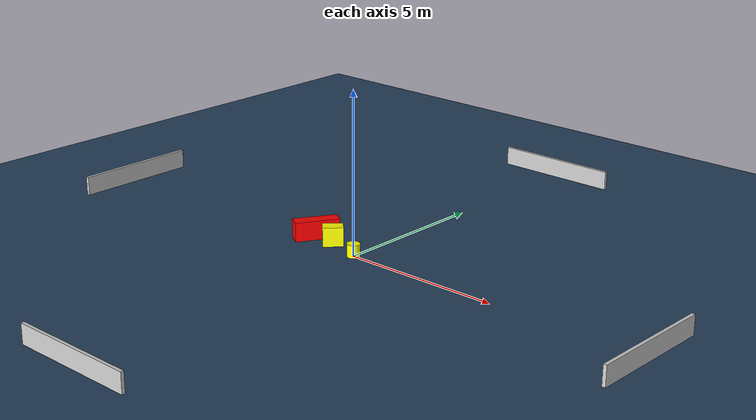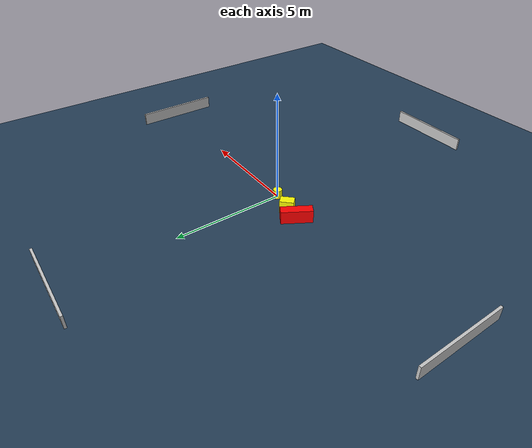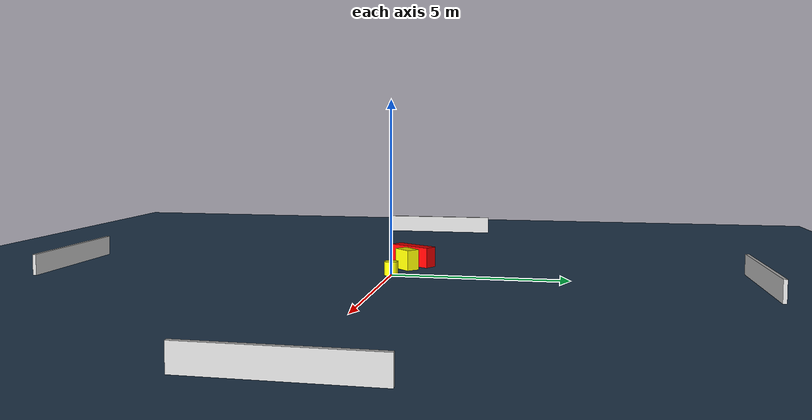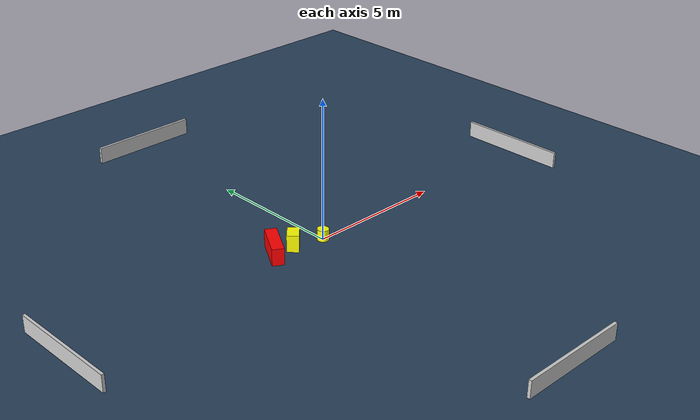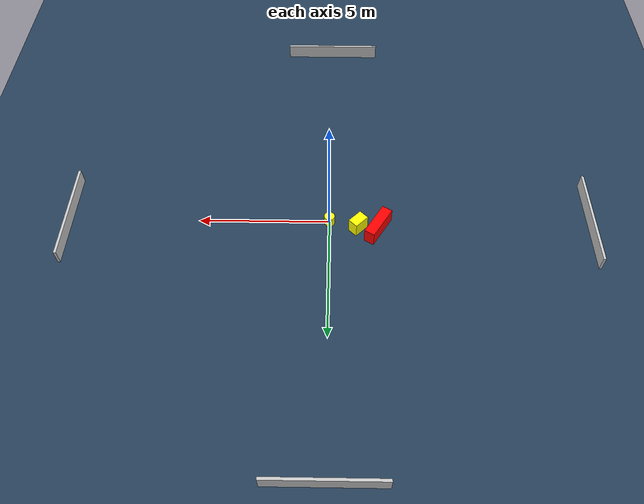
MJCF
<?xml version="1.0" ?>
<mujoco model="generated_environment">
  <option timestep="0.01" integrator="RK4" cone="elliptic"/>
  <default>
    <geom density="1"/>
  </default>
  <asset>
    <texture builtin="gradient" height="3072" name="skybox" rgb1="0.3 0.5 0.7" rgb2="0 0 0" type="skybox" width="512"/>
    <texture builtin="checker" height="300" name="groundplane" rgb1="0.2 0.3 0.4" rgb2="0.1 0.2 0.3" type="2d" width="300"/>
    <material name="groundplane" reflectance="0.2" texrepeat="5 5" texture="groundplane"/>
  </asset>
  <worldbody>
    <light dir="0 0 -1" directional="true" pos="0 0 1.5"/>
    <geom condim="3" friction="0.5 0.005 0.001" material="groundplane" name="floor" pos="0 0 0" size="0 0 0.05" type="plane"/>
    <body name="walls">
      <geom name="wall_1" condim="4" pos="-10.0 0.0 0.3" rgba="0.800000011920929 0.800000011920929 0.800000011920929 1.0" size="0.05 2.0 0.3" type="box"/>
      <geom name="wall_2" condim="4" pos="10.0 0.0 0.3" rgba="0.800000011920929 0.800000011920929 0.800000011920929 1.0" size="0.05 2.0 0.3" type="box"/>
      <geom name="wall_3" condim="4" pos="0.0 -10.0 0.3" rgba="0.800000011920929 0.800000011920929 0.800000011920929 1.0" size="2.0 0.05 0.3" type="box"/>
      <geom name="wall_4" condim="4" pos="0.0 10.0 0.3" rgba="0.800000011920929 0.800000011920929 0.800000011920929 1.0" size="2.0 0.05 0.3" type="box"/>
    </body>
    <body name="robot">
      <joint name="joint_x" type="slide" pos="0 0 0" axis="1 0 0"/>
      <joint name="joint_y" type="slide" pos="0 0 0" axis="0 1 0"/>
      <geom name="robot" type="cylinder" pos="0.0 0.0 0.2" size="0.2 0.2 0.0" mass="5.0" friction="1.0 0.005 0.0001" condim="4" rgba="1.0 1.0 0.0 1.0"/>
    </body>
    <body name="obstacle_1_movable">
      <geom name="obstacle_1_movable" condim="4" pos="-1.0946532316719706 0.26922525349715287 0.3" euler="0 0 225.27006982061715" friction="0.0 0.005 0.001" rgba="1.0 1.0 0.0 1.0" size="0.3117700650139323 0.203836912124031 0.3" type="box" mass="0.1"/>
      <joint type="free"/>
    </body>
    <body name="obstacle_2_static">
      <geom name="obstacle_2_static" condim="4" pos="-1.8519736178269928 0.3395741679555515 0.3" euler="0 0 238.8101096287124" friction="0.0 0.005 0.001" rgba="1.0 0.0 0.0 1.0" size="0.6896979015455785 0.20721837748946215 0.3" type="box"/>
    </body>
  </worldbody>
  <actuator>
    <motor name="actuator_x" joint="joint_x" gear="1" ctrlrange="-1 1"/>
    <motor name="actuator_y" joint="joint_y" gear="1" ctrlrange="-1 1"/>
  </actuator>
</mujoco>
